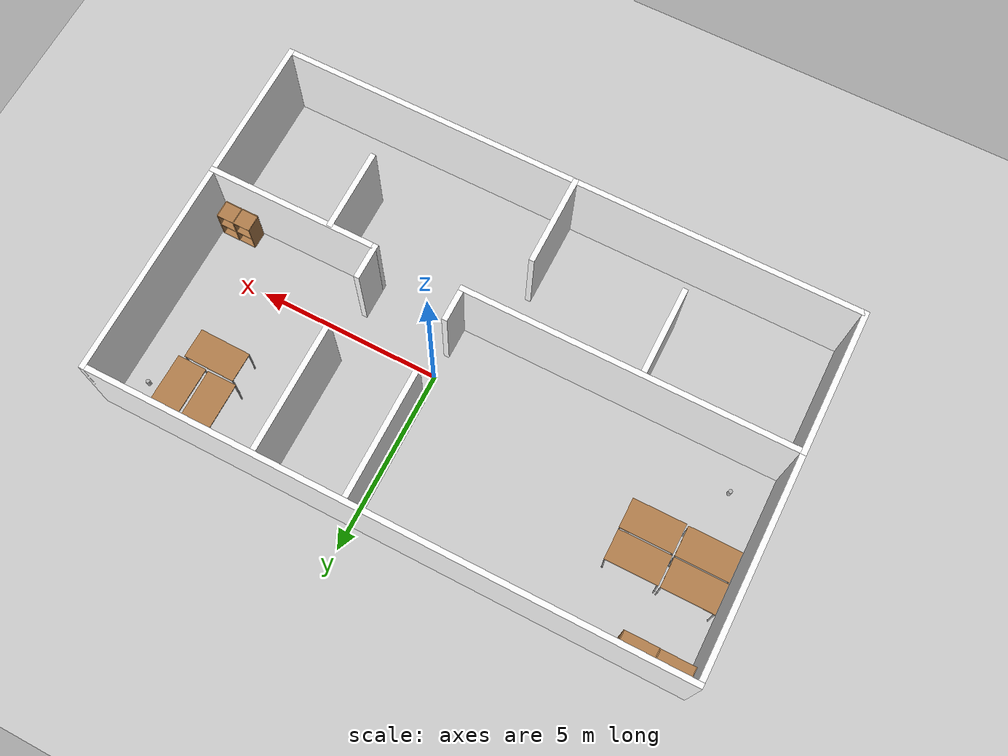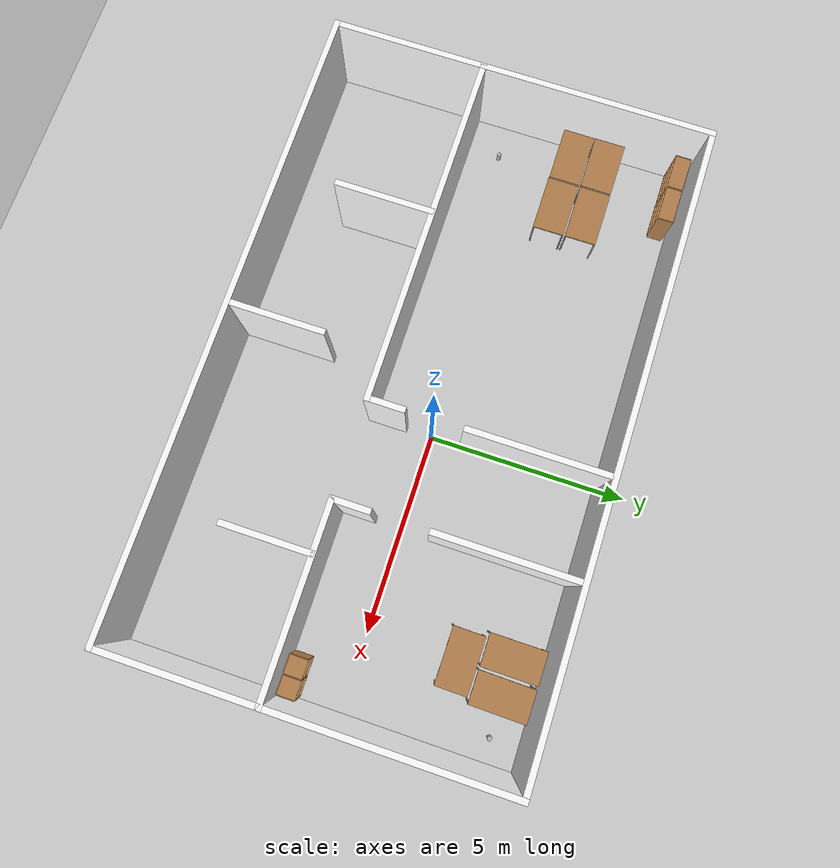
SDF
<sdf version="1.6">
 <world name="default">
  <light name="sun" type="directional">
   <pose>0 0 10 0 -0 0</pose>
   <diffuse>0.8 0.8 0.8 1</diffuse>
   <specular>0.1 0.1 0.1 1</specular>
   <attenuation>
    <range>1000</range>
    <constant>0.9</constant>
    <linear>0.01</linear>
    <quadratic>0.001</quadratic>
   </attenuation>
   <direction>-0.5 0.5 -1</direction>
  </light>
  <model name="ground_plane">
   <static>1</static>
   <link name="link">
    <collision name="collision">
     <geometry><plane><normal>0 0 1</normal><size>100 100</size></plane></geometry>
     <surface><friction><ode><mu>100</mu><mu2>50</mu2></ode></friction></surface>
    </collision>
    <visual name="visual">
     <cast_shadows>0</cast_shadows>
     <geometry><plane><normal>0 0 1</normal><size>100 100</size></plane></geometry>
     <material>
      <script><uri>file://media/materials/scripts/gazebo.material</uri><name>Gazebo/Grey</name></script>
     </material>
    </visual>
   </link>
  </model>
  <physics name="default_physics" default="0" type="ode">
   <real_time_update_rate>1000</real_time_update_rate>
   <max_step_size>0.001</max_step_size>
   <real_time_factor>1</real_time_factor>
   <ode>
    <solver>
     <type>quick</type>
     <iters>150</iters>
     <precon_iters>0</precon_iters>
     <sor>1.4</sor>
     <use_dynamic_moi_rescaling>1</use_dynamic_moi_rescaling>
    </solver>
    <constraints>
     <cfm>1e-05</cfm>
     <erp>0.2</erp>
     <contact_max_correcting_vel>2000</contact_max_correcting_vel>
     <contact_surface_layer>0.01</contact_surface_layer>
    </constraints>
   </ode>
  </physics>
  <gravity>0 0 -9.8</gravity>
  <magnetic_field>6e-06 2.3e-05 -4.2e-05</magnetic_field>
  <atmosphere type="adiabatic"/>
  <scene><ambient>0.4 0.4 0.4 1</ambient><background>0.7 0.7 0.7 1</background><shadows>1</shadows></scene>
  <spherical_coordinates>
   <surface_model>EARTH_WGS84</surface_model>
   <latitude_deg>0</latitude_deg>
   <longitude_deg>0</longitude_deg>
   <elevation>0</elevation>
   <heading_deg>0</heading_deg>
  </spherical_coordinates>
  <model name="house">
   <pose>-0.935333 -0.56925 0 0 -0 0</pose>
   <link name="Wall_1">
    <collision name="Wall_1_Collision">
     <geometry><box><size>16 0.15 2.5</size></box></geometry>
     <pose>0 0 1.25 0 -0 0</pose>
    </collision>
    <visual name="Wall_1_Visual">
     <pose>0 0 1.25 0 -0 0</pose>
     <geometry><box><size>16 0.15 2.5</size></box></geometry>
     <material>
      <script><uri>file://media/materials/scripts/gazebo.material</uri><name>__default__</name></script>
      <ambient>1 1 1 1</ambient>
     </material>
    </visual>
    <pose>0 4.85 0 0 -0 0</pose>
   </link>
   <link name="Wall_15">
    <collision name="Wall_15_Collision">
     <geometry><box><size>3.5 0.15 2.5</size></box></geometry>
     <pose>0 0 1.25 0 -0 0</pose>
    </collision>
    <visual name="Wall_15_Visual">
     <pose>0 0 1.25 0 -0 0</pose>
     <geometry><box><size>3.5 0.15 2.5</size></box></geometry>
     <material>
      <script><uri>file://media/materials/scripts/gazebo.material</uri><name>__default__</name></script>
      <ambient>1 1 1 1</ambient>
     </material>
    </visual>
    <pose>3.325 3.025 0 0 0 -1.5708</pose>
   </link>
   <link name="Wall_17">
    <collision name="Wall_17_Collision">
     <geometry><box><size>3.5 0.15 2.5</size></box></geometry>
     <pose>0 0 1.25 0 -0 0</pose>
    </collision>
    <visual name="Wall_17_Visual">
     <pose>0 0 1.25 0 -0 0</pose>
     <geometry><box><size>3.5 0.15 2.5</size></box></geometry>
     <material>
      <script><uri>file://media/materials/scripts/gazebo.material</uri><name>__default__</name></script>
      <ambient>1 1 1 1</ambient>
     </material>
    </visual>
    <pose>0.904887 3.04511 0 0 0 -1.5708</pose>
   </link>
   <link name="Wall_19">
    <collision name="Wall_19_Collision">
     <geometry><box><size>4 0.15 2.5</size></box></geometry>
     <pose>0 0 1.25 0 -0 0</pose>
    </collision>
    <visual name="Wall_19_Visual">
     <pose>0 0 1.25 0 -0 0</pose>
     <geometry><box><size>4 0.15 2.5</size></box></geometry>
     <material>
      <script><uri>file://media/materials/scripts/gazebo.material</uri><name>__default__</name></script>
      <ambient>1 1 1 1</ambient>
     </material>
    </visual>
    <pose>-7.925 -2.925 0 0 0 -1.5708</pose>
   </link>
   <link name="Wall_2">
    <collision name="Wall_2_Collision">
     <geometry><box><size>6 0.15 2.5</size></box></geometry>
     <pose>0 0 1.25 0 -0 0</pose>
    </collision>
    <visual name="Wall_2_Visual">
     <pose>0 0 1.25 0 -0 0</pose>
     <geometry><box><size>6 0.15 2.5</size></box></geometry>
     <material>
      <script><uri>file://media/materials/scripts/gazebo.material</uri><name>__default__</name></script>
      <ambient>1 1 1 1</ambient>
     </material>
    </visual>
    <pose>7.925 1.925 0 0 0 -1.5708</pose>
   </link>
   <link name="Wall_20">
    <collision name="Wall_20_Collision">
     <geometry><box><size>16 0.15 2.5</size></box></geometry>
     <pose>0 0 1.25 0 -0 0</pose>
    </collision>
    <visual name="Wall_20_Visual">
     <pose>0 0 1.25 0 -0 0</pose>
     <geometry><box><size>16 0.15 2.5</size></box></geometry>
     <material>
      <script><uri>file://media/materials/scripts/gazebo.material</uri><name>__default__</name></script>
      <ambient>1 1 1 1</ambient>
     </material>
    </visual>
    <pose>0 -4.85 0 0 -0 0</pose>
   </link>
   <link name="Wall_21">
    <collision name="Wall_21_Collision">
     <geometry><box><size>4 0.15 2.5</size></box></geometry>
     <pose>0 0 1.25 0 -0 0</pose>
    </collision>
    <visual name="Wall_21_Visual">
     <pose>0 0 1.25 0 -0 0</pose>
     <geometry><box><size>4 0.15 2.5</size></box></geometry>
     <material>
      <script><uri>file://media/materials/scripts/gazebo.material</uri><name>__default__</name></script>
      <ambient>1 1 1 1</ambient>
     </material>
    </visual>
    <pose>7.925 -2.925 0 0 -0 1.5708</pose>
   </link>
   <link name="Wall_23">
    <collision name="Wall_23_Collision">
     <geometry><box><size>2.5 0.15 2.5</size></box></geometry>
     <pose>0 0 1.25 0 -0 0</pose>
    </collision>
    <visual name="Wall_23_Visual">
     <pose>0 0 1.25 0 -0 0</pose>
     <geometry><box><size>2.5 0.15 2.5</size></box></geometry>
     <material>
      <script><uri>file://media/materials/scripts/gazebo.material</uri><name>__default__</name></script>
      <ambient>1 1 1 1</ambient>
     </material>
    </visual>
    <pose>-3.84508 -2.21316 0 0 0 -1.5708</pose>
   </link>
   <link name="Wall_25">
    <collision name="Wall_25_Collision">
     <geometry><box><size>2.5 0.15 2.5</size></box></geometry>
     <pose>0 0 1.25 0 -0 0</pose>
    </collision>
    <visual name="Wall_25_Visual">
     <pose>0 0 1.25 0 -0 0</pose>
     <geometry><box><size>2.5 0.15 2.5</size></box></geometry>
     <material>
      <script><uri>file://media/materials/scripts/gazebo.material</uri><name>__default__</name></script>
      <ambient>1 1 1 1</ambient>
     </material>
    </visual>
    <pose>-0.227455 -3.66699 0 0 -0 1.5708</pose>
   </link>
   <link name="Wall_27">
    <collision name="Wall_27_Collision">
     <geometry><box><size>2.25 0.15 2.5</size></box></geometry>
     <pose>0 0 1.25 0 -0 0</pose>
    </collision>
    <visual name="Wall_27_Visual">
     <pose>0 0 1.25 0 -0 0</pose>
     <geometry><box><size>2.25 0.15 2.5</size></box></geometry>
     <material>
      <script><uri>file://media/materials/scripts/gazebo.material</uri><name>__default__</name></script>
      <ambient>1 1 1 1</ambient>
     </material>
    </visual>
    <pose>4.58718 -2.08816 0 0 0 -1.5708</pose>
   </link>
   <link name="Wall_3">
    <collision name="Wall_3_Collision">
     <geometry><box><size>4.75 0.15 2.5</size></box></geometry>
     <pose>0 0 1.25 0 -0 0</pose>
    </collision>
    <visual name="Wall_3_Visual">
     <pose>0 0 1.25 0 -0 0</pose>
     <geometry><box><size>4.75 0.15 2.5</size></box></geometry>
     <material>
      <script><uri>file://media/materials/scripts/gazebo.material</uri><name>__default__</name></script>
      <ambient>1 1 1 1</ambient>
     </material>
    </visual>
    <pose>5.625 -1 0 0 -0 3.14159</pose>
   </link>
   <link name="Wall_5">
    <collision name="Wall_5_Collision">
     <geometry><box><size>6 0.15 2.5</size></box></geometry>
     <pose>0 0 1.25 0 -0 0</pose>
    </collision>
    <visual name="Wall_5_Visual">
     <pose>0 0 1.25 0 -0 0</pose>
     <geometry><box><size>6 0.15 2.5</size></box></geometry>
     <material>
      <script><uri>file://media/materials/scripts/gazebo.material</uri><name>__default__</name></script>
      <ambient>1 1 1 1</ambient>
     </material>
    </visual>
    <pose>-7.925 1.925 0 0 0 -1.5708</pose>
   </link>
   <link name="Wall_6">
    <collision name="Wall_6_Collision">
     <geometry><box><size>9 0.15 2.5</size></box></geometry>
     <pose>0 0 1.25 0 -0 0</pose>
    </collision>
    <visual name="Wall_6_Visual">
     <pose>0 0 1.25 0 -0 0</pose>
     <geometry><box><size>9 0.15 2.5</size></box></geometry>
     <material>
      <script><uri>file://media/materials/scripts/gazebo.material</uri><name>__default__</name></script>
      <ambient>1 1 1 1</ambient>
     </material>
    </visual>
    <pose>-3.5 -1 0 0 -0 0</pose>
   </link>
   <link name="Wall_7">
    <collision name="Wall_7_Collision">
     <geometry><box><size>1 0.15 2.5</size></box></geometry>
     <pose>0 0 1.25 0 -0 0</pose>
    </collision>
    <visual name="Wall_7_Visual">
     <pose>0 0 1.25 0 -0 0</pose>
     <geometry><box><size>1 0.15 2.5</size></box></geometry>
     <material>
      <script><uri>file://media/materials/scripts/gazebo.material</uri><name>__default__</name></script>
      <ambient>1 1 1 1</ambient>
     </material>
    </visual>
    <pose>0.925 -0.575 0 0 -0 1.5708</pose>
   </link>
   <link name="Wall_9">
    <collision name="Wall_9_Collision">
     <geometry><box><size>1 0.15 2.5</size></box></geometry>
     <pose>0 0 1.25 0 -0 0</pose>
    </collision>
    <visual name="Wall_9_Visual">
     <pose>0 0 1.25 0 -0 0</pose>
     <geometry><box><size>1 0.15 2.5</size></box></geometry>
     <material>
      <script><uri>file://media/materials/scripts/gazebo.material</uri><name>__default__</name></script>
      <ambient>1 1 1 1</ambient>
     </material>
    </visual>
    <pose>3.325 -0.575 0 0 -0 1.5708</pose>
   </link>
   <static>1</static>
  </model>
  <model name="bookshelf">
   <static>1</static>
   <link name="link">
    <inertial><mass>1</mass></inertial>
    <collision name="back">
     <pose>0 0.005 0.6 0 -0 0</pose>
     <geometry><box><size>0.9 0.01 1.2</size></box></geometry>
    </collision>
    <visual name="visual1">
     <pose>0 0.005 0.6 0 -0 0</pose>
     <geometry><box><size>0.9 0.01 1.2</size></box></geometry>
     <material>
      <script><uri>file://media/materials/scripts/gazebo.material</uri><name>Gazebo/Wood</name></script>
     </material>
    </visual>
    <collision name="left_side">
     <pose>0.45 -0.195 0.6 0 -0 0</pose>
     <geometry><box><size>0.02 0.4 1.2</size></box></geometry>
    </collision>
    <visual name="visual2">
     <pose>0.45 -0.195 0.6 0 -0 0</pose>
     <geometry><box><size>0.02 0.4 1.2</size></box></geometry>
     <material>
      <script><uri>file://media/materials/scripts/gazebo.material</uri><name>Gazebo/Wood</name></script>
     </material>
    </visual>
    <collision name="right_side">
     <pose>-0.45 -0.195 0.6 0 -0 0</pose>
     <geometry><box><size>0.02 0.4 1.2</size></box></geometry>
    </collision>
    <visual name="visual3">
     <pose>-0.45 -0.195 0.6 0 -0 0</pose>
     <geometry><box><size>0.02 0.4 1.2</size></box></geometry>
     <material>
      <script><uri>file://media/materials/scripts/gazebo.material</uri><name>Gazebo/Wood</name></script>
     </material>
    </visual>
    <collision name="bottom">
     <pose>0 -0.195 0.03 0 -0 0</pose>
     <geometry><box><size>0.88 0.4 0.06</size></box></geometry>
    </collision>
    <visual name="visual4">
     <pose>0 -0.195 0.03 0 -0 0</pose>
     <geometry><box><size>0.88 0.4 0.06</size></box></geometry>
     <material>
      <script><uri>file://media/materials/scripts/gazebo.material</uri><name>Gazebo/Wood</name></script>
     </material>
    </visual>
    <collision name="top">
     <pose>0 -0.195 1.19 0 -0 0</pose>
     <geometry><box><size>0.88 0.4 0.02</size></box></geometry>
    </collision>
    <visual name="visual5">
     <pose>0 -0.195 1.19 0 -0 0</pose>
     <geometry><box><size>0.88 0.4 0.02</size></box></geometry>
     <material>
      <script><uri>file://media/materials/scripts/gazebo.material</uri><name>Gazebo/Wood</name></script>
     </material>
    </visual>
    <collision name="low_shelf">
     <pose>0 -0.195 0.43 0 -0 0</pose>
     <geometry><box><size>0.88 0.4 0.02</size></box></geometry>
    </collision>
    <visual name="visual6">
     <pose>0 -0.195 0.43 0 -0 0</pose>
     <geometry><box><size>0.88 0.4 0.02</size></box></geometry>
     <material>
      <script><uri>file://media/materials/scripts/gazebo.material</uri><name>Gazebo/Wood</name></script>
     </material>
    </visual>
    <collision name="high_shelf">
     <pose>0 -0.195 0.8 0 -0 0</pose>
     <geometry><box><size>0.88 0.4 0.02</size></box></geometry>
    </collision>
    <visual name="visual7">
     <pose>0 -0.195 0.8 0 -0 0</pose>
     <geometry><box><size>0.88 0.4 0.02</size></box></geometry>
     <material>
      <script><uri>file://media/materials/scripts/gazebo.material</uri><name>Gazebo/Wood</name></script>
     </material>
    </visual>
   </link>
   <pose>-8.31973 4.14282 0 0 -0 0</pose>
  </model>
  <model name="bookshelf_clone">
   <static>1</static>
   <link name="link">
    <inertial><mass>1</mass></inertial>
    <collision name="back">
     <pose>0 0.005 0.6 0 -0 0</pose>
     <geometry><box><size>0.9 0.01 1.2</size></box></geometry>
    </collision>
    <visual name="visual1">
     <pose>0 0.005 0.6 0 -0 0</pose>
     <geometry><box><size>0.9 0.01 1.2</size></box></geometry>
     <material>
      <script><uri>file://media/materials/scripts/gazebo.material</uri><name>Gazebo/Wood</name></script>
     </material>
    </visual>
    <collision name="left_side">
     <pose>0.45 -0.195 0.6 0 -0 0</pose>
     <geometry><box><size>0.02 0.4 1.2</size></box></geometry>
    </collision>
    <visual name="visual2">
     <pose>0.45 -0.195 0.6 0 -0 0</pose>
     <geometry><box><size>0.02 0.4 1.2</size></box></geometry>
     <material>
      <script><uri>file://media/materials/scripts/gazebo.material</uri><name>Gazebo/Wood</name></script>
     </material>
    </visual>
    <collision name="right_side">
     <pose>-0.45 -0.195 0.6 0 -0 0</pose>
     <geometry><box><size>0.02 0.4 1.2</size></box></geometry>
    </collision>
    <visual name="visual3">
     <pose>-0.45 -0.195 0.6 0 -0 0</pose>
     <geometry><box><size>0.02 0.4 1.2</size></box></geometry>
     <material>
      <script><uri>file://media/materials/scripts/gazebo.material</uri><name>Gazebo/Wood</name></script>
     </material>
    </visual>
    <collision name="bottom">
     <pose>0 -0.195 0.03 0 -0 0</pose>
     <geometry><box><size>0.88 0.4 0.06</size></box></geometry>
    </collision>
    <visual name="visual4">
     <pose>0 -0.195 0.03 0 -0 0</pose>
     <geometry><box><size>0.88 0.4 0.06</size></box></geometry>
     <material>
      <script><uri>file://media/materials/scripts/gazebo.material</uri><name>Gazebo/Wood</name></script>
     </material>
    </visual>
    <collision name="top">
     <pose>0 -0.195 1.19 0 -0 0</pose>
     <geometry><box><size>0.88 0.4 0.02</size></box></geometry>
    </collision>
    <visual name="visual5">
     <pose>0 -0.195 1.19 0 -0 0</pose>
     <geometry><box><size>0.88 0.4 0.02</size></box></geometry>
     <material>
      <script><uri>file://media/materials/scripts/gazebo.material</uri><name>Gazebo/Wood</name></script>
     </material>
    </visual>
    <collision name="low_shelf">
     <pose>0 -0.195 0.43 0 -0 0</pose>
     <geometry><box><size>0.88 0.4 0.02</size></box></geometry>
    </collision>
    <visual name="visual6">
     <pose>0 -0.195 0.43 0 -0 0</pose>
     <geometry><box><size>0.88 0.4 0.02</size></box></geometry>
     <material>
      <script><uri>file://media/materials/scripts/gazebo.material</uri><name>Gazebo/Wood</name></script>
     </material>
    </visual>
    <collision name="high_shelf">
     <pose>0 -0.195 0.8 0 -0 0</pose>
     <geometry><box><size>0.88 0.4 0.02</size></box></geometry>
    </collision>
    <visual name="visual7">
     <pose>0 -0.195 0.8 0 -0 0</pose>
     <geometry><box><size>0.88 0.4 0.02</size></box></geometry>
     <material>
      <script><uri>file://media/materials/scripts/gazebo.material</uri><name>Gazebo/Wood</name></script>
     </material>
    </visual>
   </link>
   <pose>-7.40067 4.13661 0 0 -0 0</pose>
  </model>
  <model name="cabinet">
   <static>1</static>
   <link name="cabinet_bottom_plate">
    <inertial>
     <pose>0 0 -1 0 -0 0</pose>
     <inertia><ixx>2.05</ixx><ixy>0</ixy><ixz>0</ixz><iyy>2.05</iyy><iyz>0</iyz><izz>2.05</izz></inertia>
     <mass>25</mass>
    </inertial>
    <collision name="cabinet_bottom_plate_geom">
     <pose>0 0 0.01 0 -0 0</pose>
     <geometry><box><size>0.45 0.45 0.02</size></box></geometry>
    </collision>
    <visual name="cabinet_bottom_plate_geom_visual">
     <pose>0 0 0.01 0 -0 0</pose>
     <geometry><box><size>0.45 0.45 0.02</size></box></geometry>
     <material>
      <script><uri>file://media/materials/scripts/gazebo.material</uri><name>Gazebo/Wood</name></script>
     </material>
    </visual>
    <collision name="cabinet_bottom_plate_geom_cabinet_back_plate">
     <pose>0.235 0 0.51 0 -0 0</pose>
     <geometry><box><size>0.02 0.45 1.02</size></box></geometry>
    </collision>
    <visual name="cabinet_bottom_plate_geom_cabinet_back_plate_visual">
     <pose>0.235 0 0.51 0 -0 0</pose>
     <geometry><box><size>0.02 0.45 1.02</size></box></geometry>
     <material>
      <script><uri>file://media/materials/scripts/gazebo.material</uri><name>Gazebo/Wood</name></script>
     </material>
    </visual>
    <collision name="cabinet_bottom_plate_geom_cabinet_left_plate">
     <pose>0 0.235 0.51 0 -0 0</pose>
     <geometry><box><size>0.45 0.02 1.02</size></box></geometry>
    </collision>
    <visual name="cabinet_bottom_plate_geom_cabinet_left_plate_visual">
     <pose>0 0.235 0.51 0 -0 0</pose>
     <geometry><box><size>0.45 0.02 1.02</size></box></geometry>
     <material>
      <script><uri>file://media/materials/scripts/gazebo.material</uri><name>Gazebo/Wood</name></script>
     </material>
    </visual>
    <collision name="cabinet_bottom_plate_geom_cabinet_middle_plate">
     <pose>0 0 0.51 0 -0 0</pose>
     <geometry><box><size>0.45 0.45 0.02</size></box></geometry>
    </collision>
    <visual name="cabinet_bottom_plate_geom_cabinet_middle_plate_visual">
     <pose>0 0 0.51 0 -0 0</pose>
     <geometry><box><size>0.45 0.45 0.02</size></box></geometry>
     <material>
      <script><uri>file://media/materials/scripts/gazebo.material</uri><name>Gazebo/Wood</name></script>
     </material>
    </visual>
    <collision name="cabinet_bottom_plate_geom_cabinet_right_plate">
     <pose>0 -0.235 0.51 0 -0 0</pose>
     <geometry><box><size>0.45 0.02 1.02</size></box></geometry>
    </collision>
    <visual name="cabinet_bottom_plate_geom_cabinet_right_plate_visual">
     <pose>0 -0.235 0.51 0 -0 0</pose>
     <geometry><box><size>0.45 0.02 1.02</size></box></geometry>
     <material>
      <script><uri>file://media/materials/scripts/gazebo.material</uri><name>Gazebo/Wood</name></script>
     </material>
    </visual>
    <collision name="cabinet_bottom_plate_geom_cabinet_top_plate">
     <pose>0 0 1.01 0 -0 0</pose>
     <geometry><box><size>0.45 0.45 0.02</size></box></geometry>
    </collision>
    <visual name="cabinet_bottom_plate_geom_cabinet_top_plate_visual">
     <pose>0 0 1.01 0 -0 0</pose>
     <geometry><box><size>0.45 0.45 0.02</size></box></geometry>
     <material>
      <script><uri>file://media/materials/scripts/gazebo.material</uri><name>Gazebo/Wood</name></script>
     </material>
    </visual>
   </link>
   <pose>6.62779 -1.24654 0 0 0 -1.57343</pose>
  </model>
  <model name="cabinet_clone">
   <static>1</static>
   <link name="cabinet_bottom_plate">
    <inertial>
     <pose>0 0 -1 0 -0 0</pose>
     <inertia><ixx>2.05</ixx><ixy>0</ixy><ixz>0</ixz><iyy>2.05</iyy><iyz>0</iyz><izz>2.05</izz></inertia>
     <mass>25</mass>
    </inertial>
    <collision name="cabinet_bottom_plate_geom">
     <pose>0 0 0.01 0 -0 0</pose>
     <geometry><box><size>0.45 0.45 0.02</size></box></geometry>
    </collision>
    <visual name="cabinet_bottom_plate_geom_visual">
     <pose>0 0 0.01 0 -0 0</pose>
     <geometry><box><size>0.45 0.45 0.02</size></box></geometry>
     <material>
      <script><uri>file://media/materials/scripts/gazebo.material</uri><name>Gazebo/Wood</name></script>
     </material>
    </visual>
    <collision name="cabinet_bottom_plate_geom_cabinet_back_plate">
     <pose>0.235 0 0.51 0 -0 0</pose>
     <geometry><box><size>0.02 0.45 1.02</size></box></geometry>
    </collision>
    <visual name="cabinet_bottom_plate_geom_cabinet_back_plate_visual">
     <pose>0.235 0 0.51 0 -0 0</pose>
     <geometry><box><size>0.02 0.45 1.02</size></box></geometry>
     <material>
      <script><uri>file://media/materials/scripts/gazebo.material</uri><name>Gazebo/Wood</name></script>
     </material>
    </visual>
    <collision name="cabinet_bottom_plate_geom_cabinet_left_plate">
     <pose>0 0.235 0.51 0 -0 0</pose>
     <geometry><box><size>0.45 0.02 1.02</size></box></geometry>
    </collision>
    <visual name="cabinet_bottom_plate_geom_cabinet_left_plate_visual">
     <pose>0 0.235 0.51 0 -0 0</pose>
     <geometry><box><size>0.45 0.02 1.02</size></box></geometry>
     <material>
      <script><uri>file://media/materials/scripts/gazebo.material</uri><name>Gazebo/Wood</name></script>
     </material>
    </visual>
    <collision name="cabinet_bottom_plate_geom_cabinet_middle_plate">
     <pose>0 0 0.51 0 -0 0</pose>
     <geometry><box><size>0.45 0.45 0.02</size></box></geometry>
    </collision>
    <visual name="cabinet_bottom_plate_geom_cabinet_middle_plate_visual">
     <pose>0 0 0.51 0 -0 0</pose>
     <geometry><box><size>0.45 0.45 0.02</size></box></geometry>
     <material>
      <script><uri>file://media/materials/scripts/gazebo.material</uri><name>Gazebo/Wood</name></script>
     </material>
    </visual>
    <collision name="cabinet_bottom_plate_geom_cabinet_right_plate">
     <pose>0 -0.235 0.51 0 -0 0</pose>
     <geometry><box><size>0.45 0.02 1.02</size></box></geometry>
    </collision>
    <visual name="cabinet_bottom_plate_geom_cabinet_right_plate_visual">
     <pose>0 -0.235 0.51 0 -0 0</pose>
     <geometry><box><size>0.45 0.02 1.02</size></box></geometry>
     <material>
      <script><uri>file://media/materials/scripts/gazebo.material</uri><name>Gazebo/Wood</name></script>
     </material>
    </visual>
    <collision name="cabinet_bottom_plate_geom_cabinet_top_plate">
     <pose>0 0 1.01 0 -0 0</pose>
     <geometry><box><size>0.45 0.45 0.02</size></box></geometry>
    </collision>
    <visual name="cabinet_bottom_plate_geom_cabinet_top_plate_visual">
     <pose>0 0 1.01 0 -0 0</pose>
     <geometry><box><size>0.45 0.45 0.02</size></box></geometry>
     <material>
      <script><uri>file://media/materials/scripts/gazebo.material</uri><name>Gazebo/Wood</name></script>
     </material>
    </visual>
   </link>
   <pose>6.15051 -1.24927 0 0 0 -1.57343</pose>
  </model>
  <model name="table">
   <static>0</static>
   <link name="link">
    <collision name="surface">
     <pose>0 0 1 0 -0 0</pose>
     <geometry><box><size>1.5 0.8 0.03</size></box></geometry>
     <surface><friction><ode><mu>0.6</mu><mu2>0.6</mu2></ode></friction></surface>
    </collision>
    <visual name="visual1">
     <pose>0 0 1 0 -0 0</pose>
     <geometry><box><size>1.4 0.8 0.04</size></box></geometry>
     <material>
      <script><uri>file://media/materials/scripts/gazebo.material</uri><name>Gazebo/Wood</name></script>
     </material>
    </visual>
    <collision name="front_left_leg">
     <pose>0.68 0.38 0.5 0 -0 0</pose>
     <geometry><cylinder><radius>0.02</radius><length>1</length></cylinder></geometry>
    </collision>
    <visual name="front_left_leg">
     <pose>0.68 0.38 0.5 0 -0 0</pose>
     <geometry><cylinder><radius>0.02</radius><length>1</length></cylinder></geometry>
     <material>
      <script><uri>file://media/materials/scripts/gazebo.material</uri><name>Gazebo/Grey</name></script>
     </material>
    </visual>
    <collision name="front_right_leg">
     <pose>0.68 -0.38 0.5 0 -0 0</pose>
     <geometry><cylinder><radius>0.02</radius><length>1</length></cylinder></geometry>
    </collision>
    <visual name="front_right_leg">
     <pose>0.68 -0.38 0.5 0 -0 0</pose>
     <geometry><cylinder><radius>0.02</radius><length>1</length></cylinder></geometry>
     <material>
      <script><uri>file://media/materials/scripts/gazebo.material</uri><name>Gazebo/Grey</name></script>
     </material>
    </visual>
    <collision name="back_right_leg">
     <pose>-0.68 -0.38 0.5 0 -0 0</pose>
     <geometry><cylinder><radius>0.02</radius><length>1</length></cylinder></geometry>
    </collision>
    <visual name="back_right_leg">
     <pose>-0.68 -0.38 0.5 0 -0 0</pose>
     <geometry><cylinder><radius>0.02</radius><length>1</length></cylinder></geometry>
     <material>
      <script><uri>file://media/materials/scripts/gazebo.material</uri><name>Gazebo/Grey</name></script>
     </material>
    </visual>
    <collision name="back_left_leg">
     <pose>-0.68 0.38 0.5 0 -0 0</pose>
     <geometry><cylinder><radius>0.02</radius><length>1</length></cylinder></geometry>
    </collision>
    <visual name="back_left_leg">
     <pose>-0.68 0.38 0.5 0 -0 0</pose>
     <geometry><cylinder><radius>0.02</radius><length>1</length></cylinder></geometry>
     <material>
      <script><uri>file://media/materials/scripts/gazebo.material</uri><name>Gazebo/Grey</name></script>
     </material>
    </visual>
    <inertial>
     <inertia><ixx>1</ixx><ixy>0</ixy><ixz>0</ixz><iyy>1</iyy><iyz>0</iyz><izz>1</izz></inertia>
     <mass>1</mass>
    </inertial>
   </link>
   <pose>-7.98605 2.04422 0 1e-06 -0 1.9e-05</pose>
  </model>
  <model name="table_clone">
   <static>0</static>
   <link name="link">
    <collision name="surface">
     <pose>0 0 1 0 -0 0</pose>
     <geometry><box><size>1.5 0.8 0.03</size></box></geometry>
     <surface><friction><ode><mu>0.6</mu><mu2>0.6</mu2></ode></friction></surface>
    </collision>
    <visual name="visual1">
     <pose>0 0 1 0 -0 0</pose>
     <geometry><box><size>1.4 0.8 0.04</size></box></geometry>
     <material>
      <script><uri>file://media/materials/scripts/gazebo.material</uri><name>Gazebo/Wood</name></script>
     </material>
    </visual>
    <collision name="front_left_leg">
     <pose>0.68 0.38 0.5 0 -0 0</pose>
     <geometry><cylinder><radius>0.02</radius><length>1</length></cylinder></geometry>
    </collision>
    <visual name="front_left_leg">
     <pose>0.68 0.38 0.5 0 -0 0</pose>
     <geometry><cylinder><radius>0.02</radius><length>1</length></cylinder></geometry>
     <material>
      <script><uri>file://media/materials/scripts/gazebo.material</uri><name>Gazebo/Grey</name></script>
     </material>
    </visual>
    <collision name="front_right_leg">
     <pose>0.68 -0.38 0.5 0 -0 0</pose>
     <geometry><cylinder><radius>0.02</radius><length>1</length></cylinder></geometry>
    </collision>
    <visual name="front_right_leg">
     <pose>0.68 -0.38 0.5 0 -0 0</pose>
     <geometry><cylinder><radius>0.02</radius><length>1</length></cylinder></geometry>
     <material>
      <script><uri>file://media/materials/scripts/gazebo.material</uri><name>Gazebo/Grey</name></script>
     </material>
    </visual>
    <collision name="back_right_leg">
     <pose>-0.68 -0.38 0.5 0 -0 0</pose>
     <geometry><cylinder><radius>0.02</radius><length>1</length></cylinder></geometry>
    </collision>
    <visual name="back_right_leg">
     <pose>-0.68 -0.38 0.5 0 -0 0</pose>
     <geometry><cylinder><radius>0.02</radius><length>1</length></cylinder></geometry>
     <material>
      <script><uri>file://media/materials/scripts/gazebo.material</uri><name>Gazebo/Grey</name></script>
     </material>
    </visual>
    <collision name="back_left_leg">
     <pose>-0.68 0.38 0.5 0 -0 0</pose>
     <geometry><cylinder><radius>0.02</radius><length>1</length></cylinder></geometry>
    </collision>
    <visual name="back_left_leg">
     <pose>-0.68 0.38 0.5 0 -0 0</pose>
     <geometry><cylinder><radius>0.02</radius><length>1</length></cylinder></geometry>
     <material>
      <script><uri>file://media/materials/scripts/gazebo.material</uri><name>Gazebo/Grey</name></script>
     </material>
    </visual>
    <inertial>
     <inertia><ixx>1</ixx><ixy>0</ixy><ixz>0</ixz><iyy>1</iyy><iyz>0</iyz><izz>1</izz></inertia>
     <mass>1</mass>
    </inertial>
   </link>
   <pose>-7.97952 1.21351 0 -0 -1e-06 4e-05</pose>
  </model>
  <model name="table_clone_0">
   <static>0</static>
   <link name="link">
    <collision name="surface">
     <pose>0 0 1 0 -0 0</pose>
     <geometry><box><size>1.5 0.8 0.03</size></box></geometry>
     <surface><friction><ode><mu>0.6</mu><mu2>0.6</mu2></ode></friction></surface>
    </collision>
    <visual name="visual1">
     <pose>0 0 1 0 -0 0</pose>
     <geometry><box><size>1.4 0.8 0.04</size></box></geometry>
     <material>
      <script><uri>file://media/materials/scripts/gazebo.material</uri><name>Gazebo/Wood</name></script>
     </material>
    </visual>
    <collision name="front_left_leg">
     <pose>0.68 0.38 0.5 0 -0 0</pose>
     <geometry><cylinder><radius>0.02</radius><length>1</length></cylinder></geometry>
    </collision>
    <visual name="front_left_leg">
     <pose>0.68 0.38 0.5 0 -0 0</pose>
     <geometry><cylinder><radius>0.02</radius><length>1</length></cylinder></geometry>
     <material>
      <script><uri>file://media/materials/scripts/gazebo.material</uri><name>Gazebo/Grey</name></script>
     </material>
    </visual>
    <collision name="front_right_leg">
     <pose>0.68 -0.38 0.5 0 -0 0</pose>
     <geometry><cylinder><radius>0.02</radius><length>1</length></cylinder></geometry>
    </collision>
    <visual name="front_right_leg">
     <pose>0.68 -0.38 0.5 0 -0 0</pose>
     <geometry><cylinder><radius>0.02</radius><length>1</length></cylinder></geometry>
     <material>
      <script><uri>file://media/materials/scripts/gazebo.material</uri><name>Gazebo/Grey</name></script>
     </material>
    </visual>
    <collision name="back_right_leg">
     <pose>-0.68 -0.38 0.5 0 -0 0</pose>
     <geometry><cylinder><radius>0.02</radius><length>1</length></cylinder></geometry>
    </collision>
    <visual name="back_right_leg">
     <pose>-0.68 -0.38 0.5 0 -0 0</pose>
     <geometry><cylinder><radius>0.02</radius><length>1</length></cylinder></geometry>
     <material>
      <script><uri>file://media/materials/scripts/gazebo.material</uri><name>Gazebo/Grey</name></script>
     </material>
    </visual>
    <collision name="back_left_leg">
     <pose>-0.68 0.38 0.5 0 -0 0</pose>
     <geometry><cylinder><radius>0.02</radius><length>1</length></cylinder></geometry>
    </collision>
    <visual name="back_left_leg">
     <pose>-0.68 0.38 0.5 0 -0 0</pose>
     <geometry><cylinder><radius>0.02</radius><length>1</length></cylinder></geometry>
     <material>
      <script><uri>file://media/materials/scripts/gazebo.material</uri><name>Gazebo/Grey</name></script>
     </material>
    </visual>
    <inertial>
     <inertia><ixx>1</ixx><ixy>0</ixy><ixz>0</ixz><iyy>1</iyy><iyz>0</iyz><izz>1</izz></inertia>
     <mass>1</mass>
    </inertial>
   </link>
   <pose>-6.55682 2.04428 0.015108 1e-06 0.021584 1.9e-05</pose>
  </model>
  <model name="table_clone_1">
   <static>0</static>
   <link name="link">
    <collision name="surface">
     <pose>0 0 1 0 -0 0</pose>
     <geometry><box><size>1.5 0.8 0.03</size></box></geometry>
     <surface><friction><ode><mu>0.6</mu><mu2>0.6</mu2></ode></friction></surface>
    </collision>
    <visual name="visual1">
     <pose>0 0 1 0 -0 0</pose>
     <geometry><box><size>1.4 0.8 0.04</size></box></geometry>
     <material>
      <script><uri>file://media/materials/scripts/gazebo.material</uri><name>Gazebo/Wood</name></script>
     </material>
    </visual>
    <collision name="front_left_leg">
     <pose>0.68 0.38 0.5 0 -0 0</pose>
     <geometry><cylinder><radius>0.02</radius><length>1</length></cylinder></geometry>
    </collision>
    <visual name="front_left_leg">
     <pose>0.68 0.38 0.5 0 -0 0</pose>
     <geometry><cylinder><radius>0.02</radius><length>1</length></cylinder></geometry>
     <material>
      <script><uri>file://media/materials/scripts/gazebo.material</uri><name>Gazebo/Grey</name></script>
     </material>
    </visual>
    <collision name="front_right_leg">
     <pose>0.68 -0.38 0.5 0 -0 0</pose>
     <geometry><cylinder><radius>0.02</radius><length>1</length></cylinder></geometry>
    </collision>
    <visual name="front_right_leg">
     <pose>0.68 -0.38 0.5 0 -0 0</pose>
     <geometry><cylinder><radius>0.02</radius><length>1</length></cylinder></geometry>
     <material>
      <script><uri>file://media/materials/scripts/gazebo.material</uri><name>Gazebo/Grey</name></script>
     </material>
    </visual>
    <collision name="back_right_leg">
     <pose>-0.68 -0.38 0.5 0 -0 0</pose>
     <geometry><cylinder><radius>0.02</radius><length>1</length></cylinder></geometry>
    </collision>
    <visual name="back_right_leg">
     <pose>-0.68 -0.38 0.5 0 -0 0</pose>
     <geometry><cylinder><radius>0.02</radius><length>1</length></cylinder></geometry>
     <material>
      <script><uri>file://media/materials/scripts/gazebo.material</uri><name>Gazebo/Grey</name></script>
     </material>
    </visual>
    <collision name="back_left_leg">
     <pose>-0.68 0.38 0.5 0 -0 0</pose>
     <geometry><cylinder><radius>0.02</radius><length>1</length></cylinder></geometry>
    </collision>
    <visual name="back_left_leg">
     <pose>-0.68 0.38 0.5 0 -0 0</pose>
     <geometry><cylinder><radius>0.02</radius><length>1</length></cylinder></geometry>
     <material>
      <script><uri>file://media/materials/scripts/gazebo.material</uri><name>Gazebo/Grey</name></script>
     </material>
    </visual>
    <inertial>
     <inertia><ixx>1</ixx><ixy>0</ixy><ixz>0</ixz><iyy>1</iyy><iyz>0</iyz><izz>1</izz></inertia>
     <mass>1</mass>
    </inertial>
   </link>
   <pose>-6.5503 1.20334 0.015108 0 0.021585 4e-05</pose>
  </model>
  <model name="table_clone_2">
   <static>0</static>
   <link name="link">
    <collision name="surface">
     <pose>0 0 1 0 -0 0</pose>
     <geometry><box><size>1.5 0.8 0.03</size></box></geometry>
     <surface><friction><ode><mu>0.6</mu><mu2>0.6</mu2></ode></friction></surface>
    </collision>
    <visual name="visual1">
     <pose>0 0 1 0 -0 0</pose>
     <geometry><box><size>1.4 0.8 0.04</size></box></geometry>
     <material>
      <script><uri>file://media/materials/scripts/gazebo.material</uri><name>Gazebo/Wood</name></script>
     </material>
    </visual>
    <collision name="front_left_leg">
     <pose>0.68 0.38 0.5 0 -0 0</pose>
     <geometry><cylinder><radius>0.02</radius><length>1</length></cylinder></geometry>
    </collision>
    <visual name="front_left_leg">
     <pose>0.68 0.38 0.5 0 -0 0</pose>
     <geometry><cylinder><radius>0.02</radius><length>1</length></cylinder></geometry>
     <material>
      <script><uri>file://media/materials/scripts/gazebo.material</uri><name>Gazebo/Grey</name></script>
     </material>
    </visual>
    <collision name="front_right_leg">
     <pose>0.68 -0.38 0.5 0 -0 0</pose>
     <geometry><cylinder><radius>0.02</radius><length>1</length></cylinder></geometry>
    </collision>
    <visual name="front_right_leg">
     <pose>0.68 -0.38 0.5 0 -0 0</pose>
     <geometry><cylinder><radius>0.02</radius><length>1</length></cylinder></geometry>
     <material>
      <script><uri>file://media/materials/scripts/gazebo.material</uri><name>Gazebo/Grey</name></script>
     </material>
    </visual>
    <collision name="back_right_leg">
     <pose>-0.68 -0.38 0.5 0 -0 0</pose>
     <geometry><cylinder><radius>0.02</radius><length>1</length></cylinder></geometry>
    </collision>
    <visual name="back_right_leg">
     <pose>-0.68 -0.38 0.5 0 -0 0</pose>
     <geometry><cylinder><radius>0.02</radius><length>1</length></cylinder></geometry>
     <material>
      <script><uri>file://media/materials/scripts/gazebo.material</uri><name>Gazebo/Grey</name></script>
     </material>
    </visual>
    <collision name="back_left_leg">
     <pose>-0.68 0.38 0.5 0 -0 0</pose>
     <geometry><cylinder><radius>0.02</radius><length>1</length></cylinder></geometry>
    </collision>
    <visual name="back_left_leg">
     <pose>-0.68 0.38 0.5 0 -0 0</pose>
     <geometry><cylinder><radius>0.02</radius><length>1</length></cylinder></geometry>
     <material>
      <script><uri>file://media/materials/scripts/gazebo.material</uri><name>Gazebo/Grey</name></script>
     </material>
    </visual>
    <inertial>
     <inertia><ixx>1</ixx><ixy>0</ixy><ixz>0</ixz><iyy>1</iyy><iyz>0</iyz><izz>1</izz></inertia>
     <mass>1</mass>
    </inertial>
   </link>
   <pose>4.43502 3.42543 -0.001627 0 0 -1.57322</pose>
  </model>
  <model name="table_clone_2_clone">
   <static>0</static>
   <link name="link">
    <collision name="surface">
     <pose>0 0 1 0 -0 0</pose>
     <geometry><box><size>1.5 0.8 0.03</size></box></geometry>
     <surface><friction><ode><mu>0.6</mu><mu2>0.6</mu2></ode></friction></surface>
    </collision>
    <visual name="visual1">
     <pose>0 0 1 0 -0 0</pose>
     <geometry><box><size>1.4 0.8 0.04</size></box></geometry>
     <material>
      <script><uri>file://media/materials/scripts/gazebo.material</uri><name>Gazebo/Wood</name></script>
     </material>
    </visual>
    <collision name="front_left_leg">
     <pose>0.68 0.38 0.5 0 -0 0</pose>
     <geometry><cylinder><radius>0.02</radius><length>1</length></cylinder></geometry>
    </collision>
    <visual name="front_left_leg">
     <pose>0.68 0.38 0.5 0 -0 0</pose>
     <geometry><cylinder><radius>0.02</radius><length>1</length></cylinder></geometry>
     <material>
      <script><uri>file://media/materials/scripts/gazebo.material</uri><name>Gazebo/Grey</name></script>
     </material>
    </visual>
    <collision name="front_right_leg">
     <pose>0.68 -0.38 0.5 0 -0 0</pose>
     <geometry><cylinder><radius>0.02</radius><length>1</length></cylinder></geometry>
    </collision>
    <visual name="front_right_leg">
     <pose>0.68 -0.38 0.5 0 -0 0</pose>
     <geometry><cylinder><radius>0.02</radius><length>1</length></cylinder></geometry>
     <material>
      <script><uri>file://media/materials/scripts/gazebo.material</uri><name>Gazebo/Grey</name></script>
     </material>
    </visual>
    <collision name="back_right_leg">
     <pose>-0.68 -0.38 0.5 0 -0 0</pose>
     <geometry><cylinder><radius>0.02</radius><length>1</length></cylinder></geometry>
    </collision>
    <visual name="back_right_leg">
     <pose>-0.68 -0.38 0.5 0 -0 0</pose>
     <geometry><cylinder><radius>0.02</radius><length>1</length></cylinder></geometry>
     <material>
      <script><uri>file://media/materials/scripts/gazebo.material</uri><name>Gazebo/Grey</name></script>
     </material>
    </visual>
    <collision name="back_left_leg">
     <pose>-0.68 0.38 0.5 0 -0 0</pose>
     <geometry><cylinder><radius>0.02</radius><length>1</length></cylinder></geometry>
    </collision>
    <visual name="back_left_leg">
     <pose>-0.68 0.38 0.5 0 -0 0</pose>
     <geometry><cylinder><radius>0.02</radius><length>1</length></cylinder></geometry>
     <material>
      <script><uri>file://media/materials/scripts/gazebo.material</uri><name>Gazebo/Grey</name></script>
     </material>
    </visual>
    <inertial>
     <inertia><ixx>1</ixx><ixy>0</ixy><ixz>0</ixz><iyy>1</iyy><iyz>0</iyz><izz>1</izz></inertia>
     <mass>1</mass>
    </inertial>
   </link>
   <pose>5.30737 3.41042 -1e-06 -0 1e-06 -1.58404</pose>
  </model>
  <model name="table_clone_1_clone">
   <static>0</static>
   <link name="link">
    <collision name="surface">
     <pose>0 0 1 0 -0 0</pose>
     <geometry><box><size>1.5 0.8 0.03</size></box></geometry>
     <surface><friction><ode><mu>0.6</mu><mu2>0.6</mu2></ode></friction></surface>
    </collision>
    <visual name="visual1">
     <pose>0 0 1 0 -0 0</pose>
     <geometry><box><size>1.4 0.8 0.04</size></box></geometry>
     <material>
      <script><uri>file://media/materials/scripts/gazebo.material</uri><name>Gazebo/Wood</name></script>
     </material>
    </visual>
    <collision name="front_left_leg">
     <pose>0.68 0.38 0.5 0 -0 0</pose>
     <geometry><cylinder><radius>0.02</radius><length>1</length></cylinder></geometry>
    </collision>
    <visual name="front_left_leg">
     <pose>0.68 0.38 0.5 0 -0 0</pose>
     <geometry><cylinder><radius>0.02</radius><length>1</length></cylinder></geometry>
     <material>
      <script><uri>file://media/materials/scripts/gazebo.material</uri><name>Gazebo/Grey</name></script>
     </material>
    </visual>
    <collision name="front_right_leg">
     <pose>0.68 -0.38 0.5 0 -0 0</pose>
     <geometry><cylinder><radius>0.02</radius><length>1</length></cylinder></geometry>
    </collision>
    <visual name="front_right_leg">
     <pose>0.68 -0.38 0.5 0 -0 0</pose>
     <geometry><cylinder><radius>0.02</radius><length>1</length></cylinder></geometry>
     <material>
      <script><uri>file://media/materials/scripts/gazebo.material</uri><name>Gazebo/Grey</name></script>
     </material>
    </visual>
    <collision name="back_right_leg">
     <pose>-0.68 -0.38 0.5 0 -0 0</pose>
     <geometry><cylinder><radius>0.02</radius><length>1</length></cylinder></geometry>
    </collision>
    <visual name="back_right_leg">
     <pose>-0.68 -0.38 0.5 0 -0 0</pose>
     <geometry><cylinder><radius>0.02</radius><length>1</length></cylinder></geometry>
     <material>
      <script><uri>file://media/materials/scripts/gazebo.material</uri><name>Gazebo/Grey</name></script>
     </material>
    </visual>
    <collision name="back_left_leg">
     <pose>-0.68 0.38 0.5 0 -0 0</pose>
     <geometry><cylinder><radius>0.02</radius><length>1</length></cylinder></geometry>
    </collision>
    <visual name="back_left_leg">
     <pose>-0.68 0.38 0.5 0 -0 0</pose>
     <geometry><cylinder><radius>0.02</radius><length>1</length></cylinder></geometry>
     <material>
      <script><uri>file://media/materials/scripts/gazebo.material</uri><name>Gazebo/Grey</name></script>
     </material>
    </visual>
    <inertial>
     <inertia><ixx>1</ixx><ixy>0</ixy><ixz>0</ixz><iyy>1</iyy><iyz>0</iyz><izz>1</izz></inertia>
     <mass>1</mass>
    </inertial>
   </link>
   <pose>4.85557 2.26631 -9e-06 -1e-06 1e-06 -0.013248</pose>
  </model>
  <model name="beer">
   <link name="link">
    <pose>0 0 0.115 0 -0 0</pose>
    <inertial>
     <mass>0.39</mass>
     <inertia><ixx>0.00058</ixx><ixy>0</ixy><ixz>0</ixz><iyy>0.00058</iyy><iyz>0</iyz><izz>0.00019</izz></inertia>
    </inertial>
    <collision name="collision">
     <geometry><cylinder><radius>0.055</radius><length>0.23</length></cylinder></geometry>
    </collision>
    <visual name="visual">
     <geometry><cylinder><radius>0.055</radius><length>0.23</length></cylinder></geometry>
     <material>
      <script>
       <uri>model://beer/materials/scripts</uri>
       <uri>model://beer/materials/textures</uri>
       <name>Beer/Diffuse</name>
      </script>
     </material>
    </visual>
   </link>
   <pose>-7.87623 -0.658341 -2e-06 4e-06 -3e-06 0</pose>
  </model>
  <model name="beer_clone">
   <link name="link">
    <pose>0 0 0.115 0 -0 0</pose>
    <inertial>
     <mass>0.39</mass>
     <inertia><ixx>0.00058</ixx><ixy>0</ixy><ixz>0</ixz><iyy>0.00058</iyy><iyz>0</iyz><izz>0.00019</izz></inertia>
    </inertial>
    <collision name="collision">
     <geometry><cylinder><radius>0.055</radius><length>0.23</length></cylinder></geometry>
    </collision>
    <visual name="visual">
     <geometry><cylinder><radius>0.055</radius><length>0.23</length></cylinder></geometry>
     <material>
      <script>
       <uri>model://beer/materials/scripts</uri>
       <uri>model://beer/materials/textures</uri>
       <name>Beer/Diffuse</name>
      </script>
     </material>
    </visual>
   </link>
   <pose>6.33554 3.48779 -8e-06 -4e-06 3e-06 0</pose>
  </model>
 </world>
</sdf>
